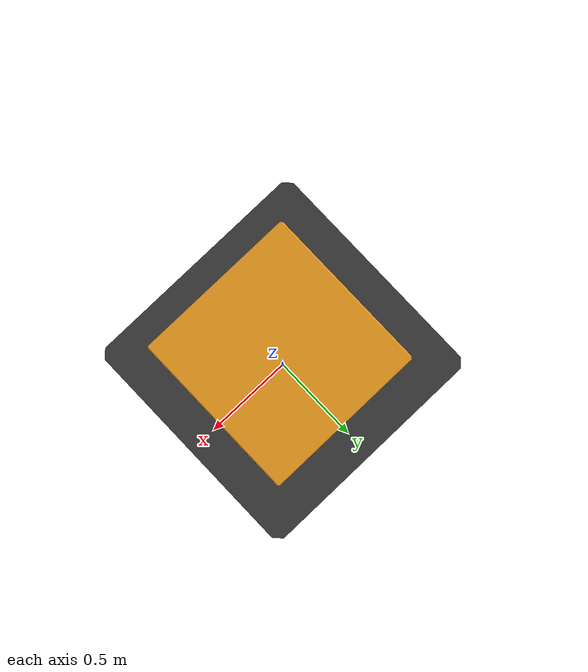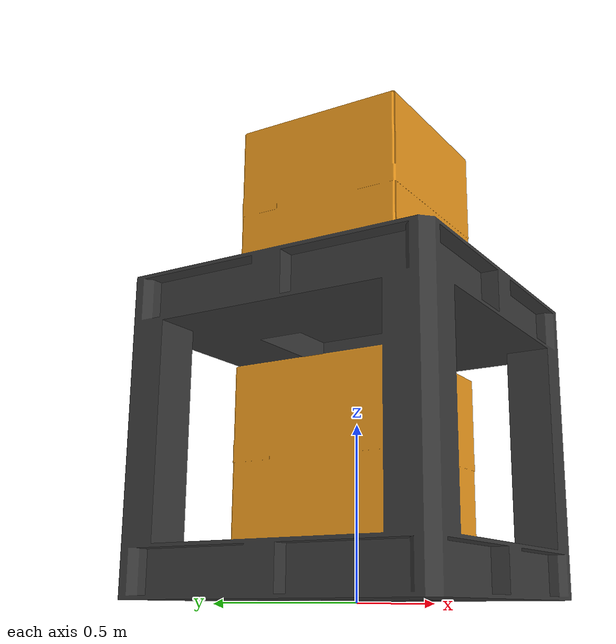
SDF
<?xml version="1.0" ?>
<sdf version="1.6">
  <model name="two_box_big_not">
    <link name="My_map">
      <inertial>
        <mass>0.1</mass>
      </inertial>
      <collision name="collision">
        <geometry>
          <mesh>
            <uri>model://two_box_big_not/meshes/two_box_big_not.dae</uri>
            <scale>0.01 0.01 0.01</scale>
          </mesh>
        </geometry>
      </collision>
      <visual name="map_visual">
        <geometry>
          <mesh>
            <uri>model://two_box_big_not/meshes/two_box_big_not.dae</uri>
            <scale>0.01 0.01 0.01</scale>
          </mesh>
        </geometry>
      </visual>
    </link>
  </model>
</sdf>
